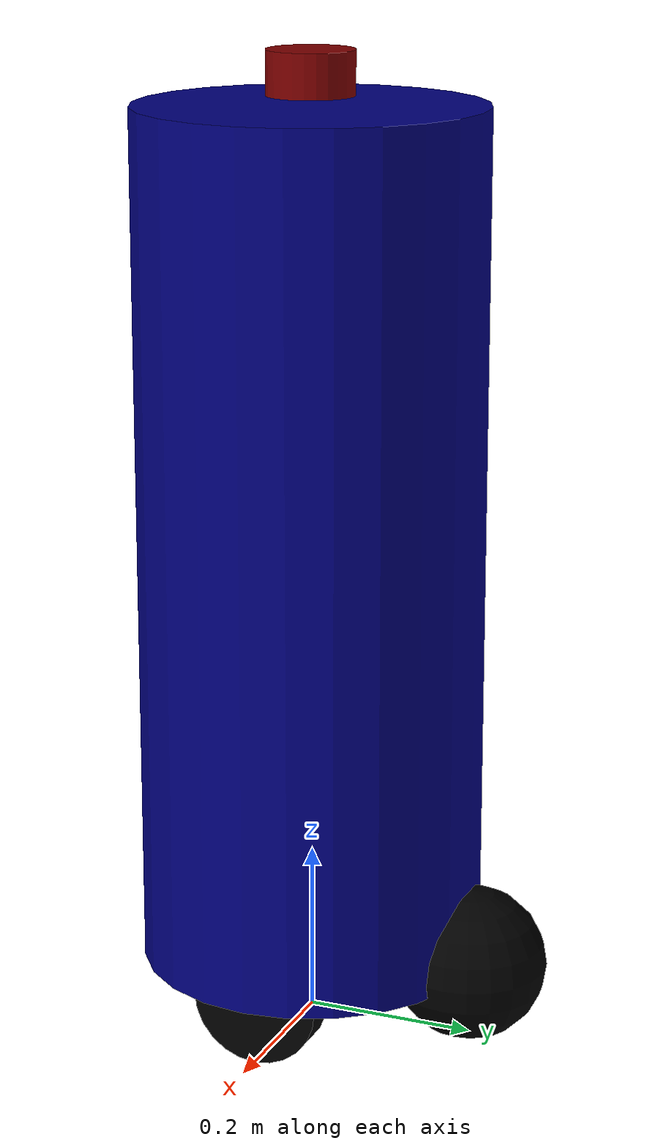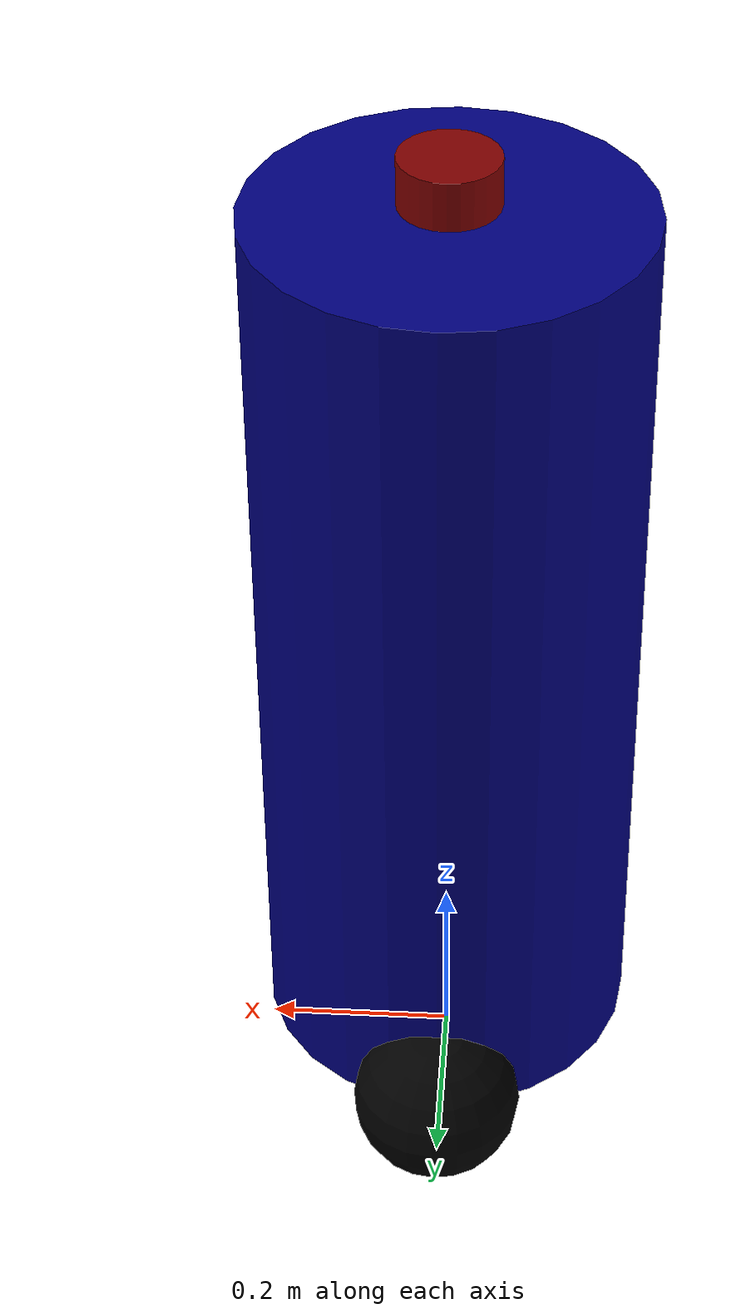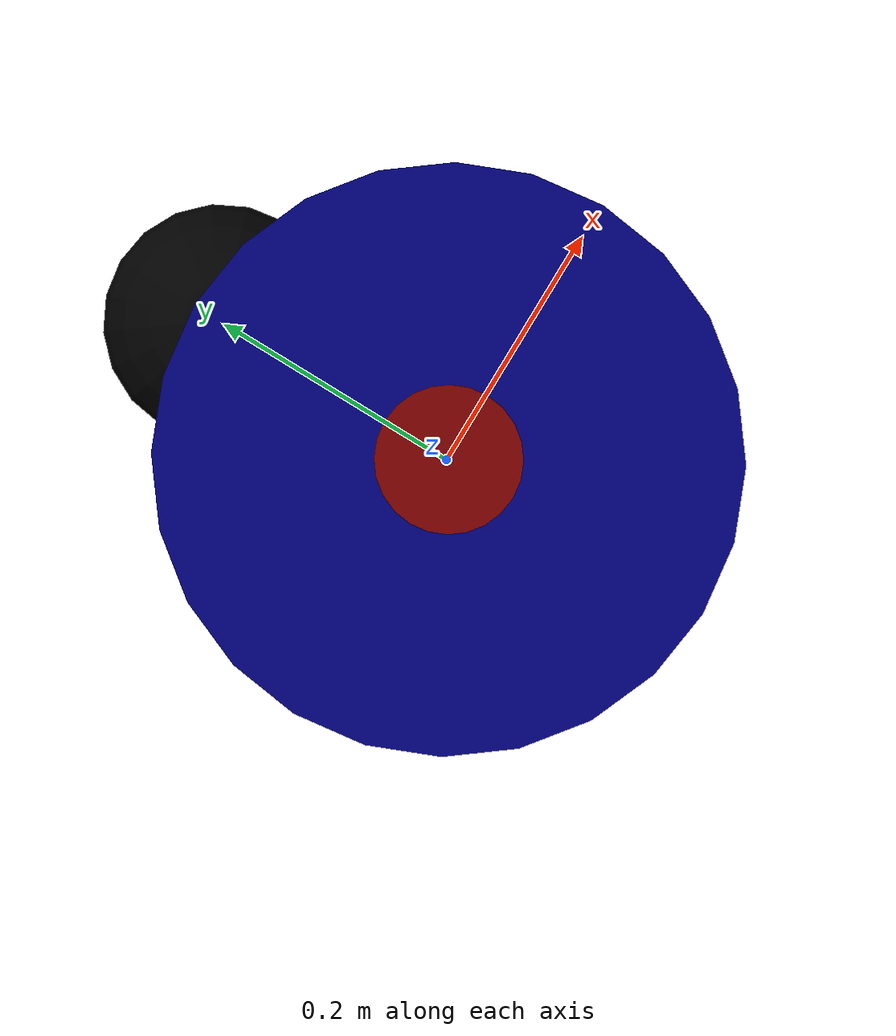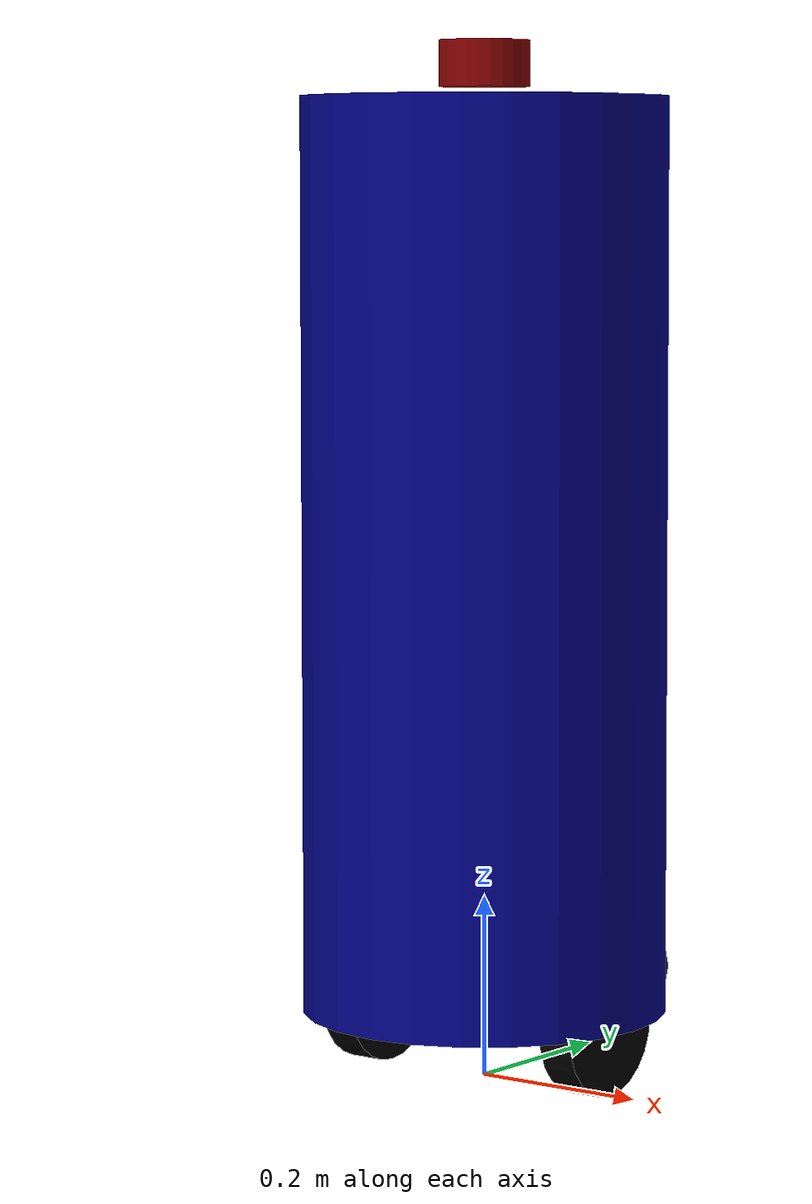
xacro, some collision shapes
<?xml version="1.0"?>
<robot name="mosro" xmlns:xacro="http://www.ros.org/wiki/xacro">

    <!-- Robot Base-->
    <xacro:include filename="common_properties.xacro" />
    <xacro:include filename="mosro_base.xacro" />

    <!-- Sensors -->
    <xacro:include filename="mosro_gazebo.xacro" />
</robot>

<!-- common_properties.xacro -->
<robot xmlns:xacro="http://www.ros.org/wiki/xacro">

    <material name="blue">
        <color rgba="0 0 0.5 1" />
    </material>

    <material name="grey">
        <color rgba="0.5 0.5 0.5 1" />
    </material>

    <material name="red">
        <color rgba="0.5 0 0 1" />
    </material>

    <material name="black">
        <color rgba="0 0 0 1" />
    </material>

    <xacro:macro name="box_inertia" params="m l w h xyz rpy">
        <inertial>
            <origin xyz="${xyz}" rpy="${rpy}" />
            <mass value="${m}" />
            <inertia ixx="${(m/12) * (h*h + l*l)}" ixy="0" ixz="0"
                     iyy="${(m/12) * (w*w + l*l)}" iyz="0"
                     izz="${(m/12) * (w*w + h*h)}" />
        </inertial>
    </xacro:macro>

    <xacro:macro name="cylinder_inertia" params="m r h xyz rpy">
        <inertial>
            <origin xyz="${xyz}" rpy="${rpy}" />
            <mass value="${m}" />
            <inertia ixx="${(m/12) * (3*r*r + h*h)}" ixy="0" ixz="0"
                     iyy="${(m/12) * (3*r*r + h*h)}" iyz="0"
                     izz="${(m/2) * (r*r)}" />
        </inertial>
    </xacro:macro>

    <xacro:macro name="sphere_inertia" params="m r xyz rpy">
        <inertial>
            <origin xyz="${xyz}" rpy="${rpy}" />
            <mass value="${m}" />
            <inertia ixx="${(2/5) * m * r * r}" ixy="0" ixz="0"
                     iyy="${(2/5) * m * r * r}" iyz="0"
                     izz="${(2/5) * m * r * r}" />
        </inertial>
    </xacro:macro>

    <xacro:macro name="gazebo_lidar_sensor" params="sensor_name link_name update_rate samples resolution min_angle max_angle min max range_resolution plugin_name topic_name output_type frame_name ">
        <gazebo reference="${link_name}">
            <sensor name="${sensor_name}" type="ray">
                <always_on>true</always_on>
                <visualize>true</visualize>
                <update_rate>10</update_rate>
                <ray>
                    <scan>
                        <horizontal>
                            <samples>${samples}</samples>
                            <resolution>${resolution}</resolution>
                            <min_angle>${min_angle}</min_angle>
                            <max_angle>${max_angle}</max_angle>
                        </horizontal>
                    </scan>
                    <range>
                        <min>${min}</min>
                        <max>${max}</max>
                        <resolution>0.15</resolution>
                    </range>
                    <noise>
                        <type>gaussian</type>
                        <mean>0.0</mean>
                        <stddev>0.01</stddev>
                    </noise>
                </ray>
                <plugin filename="libgazebo_ros_ray_sensor.so" name="${plugin_name}">
                    <topic_name>${topic_name}</topic_name>
                    <output_type>${output_type}</output_type>
                    <frame_name>${frame_name}</frame_name>
                    <radiation_type>infrared</radiation_type>
                </plugin>
            </sensor>
        </gazebo>
    </xacro:macro>
</robot>

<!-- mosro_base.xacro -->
<robot xmlns:xacro="http://www.ros.org/wiki/xacro">

    <!-- Robot Base-->
    <xacro:property name="base_length" value="0.4" />
    <xacro:property name="base_width" value="0.4" />
    <xacro:property name="base_height" value="1" />
    <xacro:property name="wheel_radius" value="0.075" />
    <xacro:property name="wheel_length" value="0.04" />

    <link name="base_footprint" />

    <link name="base_link">
        <visual>
            <geometry>
                <mesh filename="package://telerobot_description/meshes/Mosro.stl" scale="0.001 0.001 0.001"/>
            </geometry>
            <origin xyz="0 0 ${base_height}" rpy="0 0 0" />
            <material name="blue" />
        </visual>
        <collision>
            <geometry>
                <cylinder radius="${base_width / 2.0}" length="${base_height}" />
            </geometry>
            <origin xyz="0 0 ${base_height / 2.0}" rpy="0 0 0" />
        </collision>
        <xacro:box_inertia m="1.0" l="${2*base_length}" w="${2*base_width}" h="${2*base_height}"
                           xyz="0 0 ${base_height / 2.0}" rpy="0 0 0" />
    </link>

    <joint name="base_to_base_footprint" type="fixed">
        <parent link="base_footprint" />
        <child link="base_link" />
        <origin xyz="0 0 ${wheel_radius}" rpy="0 0 0" />
    </joint>

    <link name="left_wheel_link">
        <visual>
            <geometry>
                <cylinder radius="${wheel_radius}" length="${wheel_length}" />
            </geometry>
            <origin xyz="0 0 0" rpy="0 ${3.14159/2.0} 0" />
            <material name="black" />
        </visual>
        <collision>
            <geometry>
                <cylinder radius="${wheel_radius}" length="${wheel_length}" />
            </geometry>
            <origin xyz="0 0 0" rpy="0 ${3.14159/2.0} 0" />
        </collision>
        <xacro:cylinder_inertia m="1.0" r="${wheel_radius}" h="${wheel_length}"
                               xyz="0 ${base_width / 2.0} ${wheel_radius}" rpy="0 ${-3.14159 / 2.0} 0" />
    </link>

    <joint name="left_wheel_joint" type="continuous">
        <parent link="base_link" />
        <child link="left_wheel_link" />
        <origin xyz="${-base_width / 2.0 + 0.05} 0 0" rpy="0 0 0" />
        <axis xyz="1 0 0" />
    </joint>

    <link name="right_wheel_link">
        <visual>
            <geometry>
                <cylinder radius="${wheel_radius}" length="${wheel_length}" />
            </geometry>
            <origin xyz="0 0 0" rpy="0 ${3.14159/2.0} 0" />
            <material name="black" />
        </visual>
        <collision>
            <geometry>
                <cylinder radius="${wheel_radius}" length="${wheel_length}" />
            </geometry>
            <origin xyz="0 0 0" rpy="0 ${3.14159/2.0} 0"  />
        </collision>
        <xacro:cylinder_inertia m="1.0" r="${wheel_radius}" h="${wheel_length}"
                               xyz="0 ${-base_width / 2.0} ${wheel_radius}" rpy="0 ${-3.14159 / 2.0} 0" />
    </link>
    <joint name="right_wheel_joint" type="continuous">
        <parent link="base_link" />
        <child link="right_wheel_link" />
        <origin xyz="${base_width / 2.0-0.05} 0 0" rpy="0 0 0" />
        <axis xyz="1 0 0" />
    </joint>

    <link name="caster_wheel_link">
        <visual>
            <geometry>
                <sphere radius="${wheel_radius+0.015}" />
            </geometry>
            <origin xyz="0 0 0" rpy="0 0 0" />
            <material name="black" />
        </visual>
        <collision>
            <geometry>
                <sphere radius="${wheel_radius+0.015}" />
            </geometry>
            <origin xyz="0 0 0" rpy="0 0 0" />
        </collision>
        <xacro:sphere_inertia m="1.0" r="${2*wheel_radius / 2.0}"
                              xyz="0 0 0" rpy="0 0 0" />
    </link>

    <joint name="caster_wheel_joint" type="fixed">
        <parent link="base_link" />
        <child link="caster_wheel_link" />
        <origin xyz="0 ${base_width / 2.0} 0.015" rpy="0 0 0" />
    </joint>

</robot>

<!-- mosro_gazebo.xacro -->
<robot xmlns:xacro="http://www.ros.org/wiki/xacro">

    <!-- Corrected property names and more reasonable dimensions -->
    <xacro:property name="lidar_radius" value="0.01" />
    <xacro:property name="lidar_length" value="0.01" />

    <xacro:property name="camera_length" value="0.01" />
    <xacro:property name="camera_width" value="0.1" />
    <xacro:property name="camera_height" value="0.05" />

    <gazebo reference="caster_wheel_link">
        <material>Gazebo/Grey</material>
        <mu1 value="0.1" />
        <mu2 value="0.1" />
    </gazebo>

    <gazebo reference="camera_link">
        <material>Gazebo/Red</material>
    </gazebo>
    <gazebo reference="front_obstacle_link">
        <material>Gazebo/Red</material>
    </gazebo>

    <gazebo reference="lidar_link">
        <material>Gazebo/Red</material>
    </gazebo>

    <link name="camera_link">
        <visual>
            <geometry>
                <box size="${camera_length} ${camera_width} ${camera_height}" />
            </geometry>
            <material name="red" />
        </visual>
        <collision>
            <geometry>
                <box size="${camera_length} ${camera_width} ${camera_height}" />
            </geometry>
        </collision>
        <xacro:box_inertia m="0.01" l="${camera_length}" w="${camera_width}" h="${camera_height}"
                           xyz="0 0 0" rpy="0 0 0" />
    </link>

    <joint name="base_camera_joint" type="fixed">
        <parent link="base_link" />
        <child link="camera_link" />
        <origin xyz="0 0.17 ${base_height/1.5}" rpy="0 0 ${3.14/2.0}" />
    </joint>

    <link name="camera_link_optical">
    </link>

    <joint name="camera_optical_joint" type="fixed">
        <!-- these values have to be these values otherwise the gazebo camera
            image won't be aligned properly with the frame it is supposedly
            originating from -->
        <origin xyz="0 0 0" rpy="0 0 0"/>
        <parent link="camera_link"/>
        <child link="camera_link_optical"/>
    </joint>

    <gazebo reference="camera_link">
        <material>Gazebo/Red</material>
        <sensor name="camera_sensor" type="camera">
            <pose>0 0 0 0 0 0</pose>
            <visualize>true</visualize>
            <update_rate>10.0</update_rate>
            <plugin name="camera" filename="libgazebo_ros_camera.so">
                <frame_name>camera_link_optical</frame_name>
            </plugin>
        </sensor>
    </gazebo>

    <link name="front_obstacle_link">
        <visual>
            <geometry>
                <cylinder radius="${lidar_radius}" length="${lidar_length}"/>
            </geometry>
            <material name="red" />
        </visual>
        <collision>
            <geometry>
                <cylinder radius="${lidar_radius}" length="${lidar_length}"/>
            </geometry>
        </collision>
        <xacro:cylinder_inertia m="0.01" r="${lidar_radius}" h="${lidar_length}"
                           xyz="0 0 0" rpy="0 0 0" />
    </link>

    <joint name="distance_joint" type="fixed">
        <parent link="base_link" />
        <child link="front_obstacle_link" />
        <!-- Placing lidar on top of the base (base_height is 0.2) -->
        <origin xyz="0 0.17 ${(base_height*0.5)}" rpy="0 0 0" />
    </joint>

    <gazebo reference="front_obstacle_link">
        <sensor name="lidar" type="ray">
            <always_on>true</always_on>
            <visualize>true</visualize>
            <update_rate>1</update_rate>
            <ray>
                <scan>
                    <horizontal>
                        <samples>1</samples>
                        <resolution>1.0</resolution>
                        <min_angle>0.0</min_angle>
                        <max_angle>0.0</max_angle>
                    </horizontal>
                </scan>
                <range>
                    <min>0.12</min>
                    <max>12</max>
                    <resolution>0.015</resolution>
                </range>
                <noise>
                    <type>gaussian</type>
                    <mean>0.0</mean>
                    <stddev>0.01</stddev>
                </noise>
            </ray>
            <plugin filename="libgazebo_ros_ray_sensor.so" name="distance_front">
                <topic_name>front_distance</topic_name>
                <output_type>sensor_msgs/Range</output_type>
                <frame_name>front_obstacle_link</frame_name>
                <radiation_type>infrared</radiation_type>
            </plugin>
        </sensor>
    </gazebo>

        <!-- Corrected property names and more reasonable dimensions -->
    <xacro:property name="lidar_radius" value="0.05" />
    <xacro:property name="lidar_length" value="0.05" />

    <link name="lidar_link">
        <visual>
            <geometry>
                <cylinder radius="${lidar_radius}" length="${lidar_length}"/>
            </geometry>
            <material name="red" />
        </visual>
        <collision>
            <geometry>
                <cylinder radius="${lidar_radius}" length="${lidar_length}"/>
            </geometry>
        </collision>
        <xacro:cylinder_inertia m="0.01" r="${lidar_radius}" h="${lidar_length}"
                           xyz="0 0 0" rpy="0 0 0" />
    </link>

    <joint name="base_lidar_joint" type="fixed">
        <parent link="base_link" />
        <child link="lidar_link" />
        <!-- Placing lidar on top of the base (base_height is 0.2) -->
        <origin xyz="0 0 ${base_height+lidar_length/2.0+0.01}" rpy="0 0 0" />
    </joint>

    <gazebo reference="lidar_link">
        <sensor name="lidar" type="ray">
            <always_on>true</always_on>
            <visualize>true</visualize>
            <update_rate>5</update_rate>
            <ray>
            <scan>
                <horizontal>
                <samples>360</samples>
                <resolution>1.000000</resolution>
                <min_angle>0.000000</min_angle>
                <max_angle>6.280000</max_angle>
                </horizontal>
            </scan>
            <range>
                <min>0.120000</min>
                <max>3.5</max>
                <resolution>0.015000</resolution>
            </range>
            <noise>
                <type>gaussian</type>
                <mean>0.0</mean>
                <stddev>0.01</stddev>
            </noise>
            </ray>
            <plugin filename="libgazebo_ros_ray_sensor.so" name="lidar_plugin">
                <topic_name>scan</topic_name>
                <output_type>sensor_msgs/LaserScan</output_type>
                <frame_name>lidar_link</frame_name>
            </plugin>
        </sensor>
    </gazebo>

</robot>
